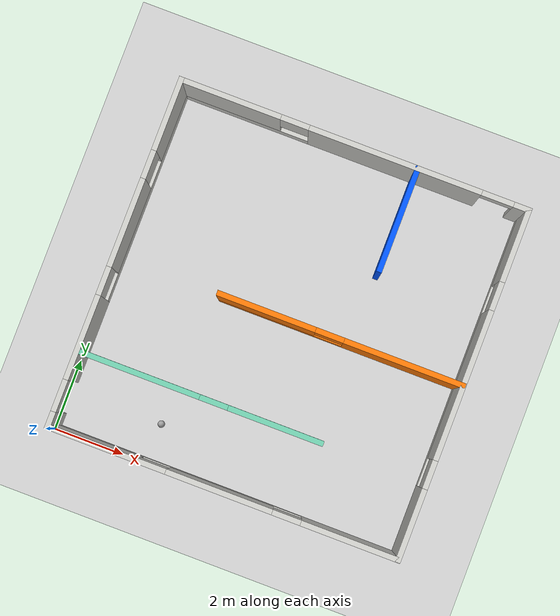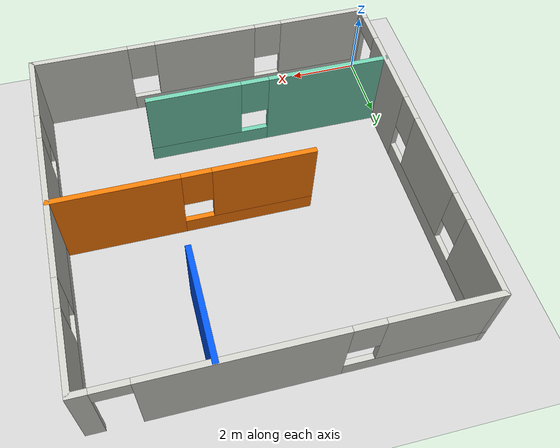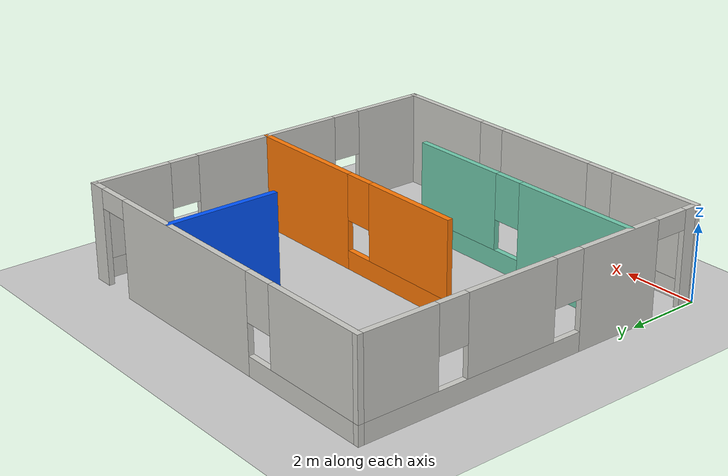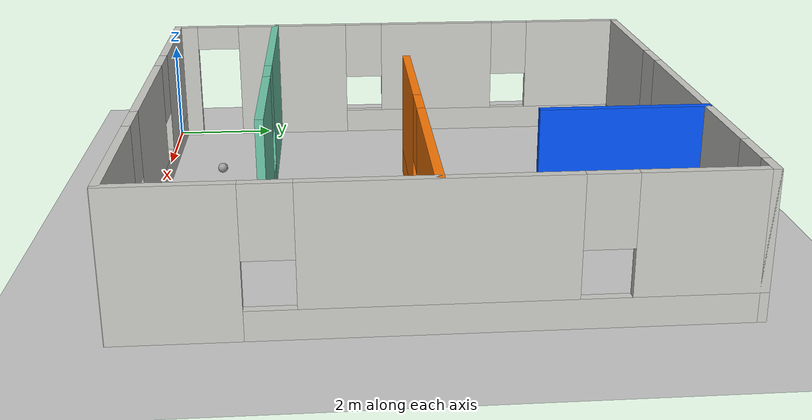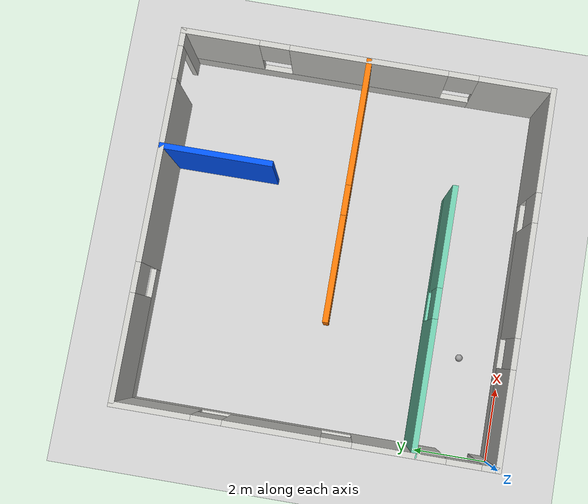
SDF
<sdf version="1.6">
 <world name="default">
  <light name="sun" type="directional">
   <pose>0 0 10 0 -0 0</pose>
   <diffuse>0.8 0.8 0.8 1</diffuse>
   <specular>0.2 0.2 0.2 1</specular>
   <attenuation>
    <range>1000</range>
    <constant>0.9</constant>
    <linear>0.01</linear>
    <quadratic>0.001</quadratic>
   </attenuation>
   <direction>-0.5 0.1 -0.9</direction>
  </light>
  <model name="ground_plane">
   <static>1</static>
   <link name="link">
    <collision name="collision">
     <geometry><plane><normal>0 0 1</normal><size>100 100</size></plane></geometry>
     <surface>
      <contact><collide_bitmask>65535</collide_bitmask></contact>
      <friction><ode><mu>100</mu><mu2>50</mu2></ode></friction>
     </surface>
    </collision>
    <visual name="visual">
     <cast_shadows>0</cast_shadows>
     <geometry><plane><normal>0 0 1</normal><size>100 100</size></plane></geometry>
     <material>
      <script><uri>file://media/materials/scripts/gazebo.material</uri><name>Gazebo/Grey</name></script>
     </material>
    </visual>
   </link>
  </model>
  <gravity>0 0 -9.8</gravity>
  <magnetic_field>6e-06 2.3e-05 -4.2e-05</magnetic_field>
  <atmosphere type="adiabatic"/>
  <physics name="default_physics" default="0" type="ode">
   <max_step_size>0.001</max_step_size>
   <real_time_factor>1</real_time_factor>
   <real_time_update_rate>1000</real_time_update_rate>
  </physics>
  <scene><ambient>0.4 0.4 0.4 1</ambient><background>0.7 0.7 0.7 1</background><shadows>1</shadows></scene>
  <audio><device>default</device></audio>
  <spherical_coordinates>
   <surface_model>EARTH_WGS84</surface_model>
   <latitude_deg>0</latitude_deg>
   <longitude_deg>0</longitude_deg>
   <elevation>0</elevation>
   <heading_deg>0</heading_deg>
  </spherical_coordinates>
  <model name="empty_world">
   <pose>5 5.00002 0 0 -0 1.56978</pose>
   <link name="Wall_18">
    <pose>0.005 -4.925 0 0 -0 0</pose>
    <visual name="Wall_18_Visual_0">
     <pose>-3.96773 0 1.25 0 -0 0</pose>
     <geometry><box><size>2.04455 0.15 2.5</size></box></geometry>
     <material>
      <script><uri>file://media/materials/scripts/gazebo.material</uri><name>Gazebo/CeilingTiled</name></script>
      <ambient>0.760784 0.662745 0.627451 1</ambient>
     </material>
    </visual>
    <collision name="Wall_18_Collision_0">
     <geometry><box><size>2.04455 0.15 2.5</size></box></geometry>
     <pose>-3.96773 0 1.25 0 -0 0</pose>
    </collision>
    <visual name="Wall_18_Visual_1">
     <pose>1.02228 0 0.25 0 -0 0</pose>
     <geometry><box><size>7.93545 0.15 0.5</size></box></geometry>
     <material>
      <script><uri>file://media/materials/scripts/gazebo.material</uri><name>Gazebo/CeilingTiled</name></script>
      <ambient>0.760784 0.662745 0.627451 1</ambient>
     </material>
    </visual>
    <collision name="Wall_18_Collision_1">
     <geometry><box><size>7.93545 0.15 0.5</size></box></geometry>
     <pose>1.02228 0 0.25 0 -0 0</pose>
    </collision>
    <visual name="Wall_18_Visual_2">
     <pose>-0.032699 0 1.5 0 -0 0</pose>
     <geometry><box><size>4.2255 0.15 2</size></box></geometry>
     <material>
      <script><uri>file://media/materials/scripts/gazebo.material</uri><name>Gazebo/CeilingTiled</name></script>
      <ambient>0.760784 0.662745 0.627451 1</ambient>
     </material>
    </visual>
    <collision name="Wall_18_Collision_2">
     <geometry><box><size>4.2255 0.15 2</size></box></geometry>
     <pose>-0.032699 0 1.5 0 -0 0</pose>
    </collision>
    <visual name="Wall_18_Visual_3">
     <pose>3.93502 0 1.5 0 -0 0</pose>
     <geometry><box><size>2.10995 0.15 2</size></box></geometry>
     <material>
      <script><uri>file://media/materials/scripts/gazebo.material</uri><name>Gazebo/CeilingTiled</name></script>
      <ambient>0.760784 0.662745 0.627451 1</ambient>
     </material>
    </visual>
    <collision name="Wall_18_Collision_3">
     <geometry><box><size>2.10995 0.15 2</size></box></geometry>
     <pose>3.93502 0 1.5 0 -0 0</pose>
    </collision>
    <visual name="Wall_18_Visual_4">
     <pose>-2.54545 0 1.9 0 -0 0</pose>
     <geometry><box><size>0.8 0.15 1.2</size></box></geometry>
     <material>
      <script><uri>file://media/materials/scripts/gazebo.material</uri><name>Gazebo/CeilingTiled</name></script>
      <ambient>0.760784 0.662745 0.627451 1</ambient>
     </material>
    </visual>
    <collision name="Wall_18_Collision_4">
     <geometry><box><size>0.8 0.15 1.2</size></box></geometry>
     <pose>-2.54545 0 1.9 0 -0 0</pose>
    </collision>
    <visual name="Wall_18_Visual_5">
     <pose>2.48005 0 1.9 0 -0 0</pose>
     <geometry><box><size>0.8 0.15 1.2</size></box></geometry>
     <material>
      <script><uri>file://media/materials/scripts/gazebo.material</uri><name>Gazebo/CeilingTiled</name></script>
      <ambient>0.760784 0.662745 0.627451 1</ambient>
     </material>
    </visual>
    <collision name="Wall_18_Collision_5">
     <geometry><box><size>0.8 0.15 1.2</size></box></geometry>
     <pose>2.48005 0 1.9 0 -0 0</pose>
    </collision>
   </link>
   <link name="Wall_19">
    <pose>4.92 0 0 0 -0 1.5708</pose>
    <visual name="Wall_19_Visual_0">
     <pose>-4.75044 0 1.25 0 -0 0</pose>
     <geometry><box><size>0.499118 0.15 2.5</size></box></geometry>
     <material>
      <script><uri>file://media/materials/scripts/gazebo.material</uri><name>Gazebo/CeilingTiled</name></script>
      <ambient>0.760784 0.662745 0.627451 1</ambient>
     </material>
    </visual>
    <collision name="Wall_19_Collision_0">
     <geometry><box><size>0.499118 0.15 2.5</size></box></geometry>
     <pose>-4.75044 0 1.25 0 -0 0</pose>
    </collision>
    <visual name="Wall_19_Visual_1">
     <pose>-1.15762 0 1.25 0 -0 0</pose>
     <geometry><box><size>4.88653 0.15 2.5</size></box></geometry>
     <material>
      <script><uri>file://media/materials/scripts/gazebo.material</uri><name>Gazebo/CeilingTiled</name></script>
      <ambient>0.760784 0.662745 0.627451 1</ambient>
     </material>
    </visual>
    <collision name="Wall_19_Collision_1">
     <geometry><box><size>4.88653 0.15 2.5</size></box></geometry>
     <pose>-1.15762 0 1.25 0 -0 0</pose>
    </collision>
    <visual name="Wall_19_Visual_2">
     <pose>3.14283 0 0.25 0 -0 0</pose>
     <geometry><box><size>3.71435 0.15 0.5</size></box></geometry>
     <material>
      <script><uri>file://media/materials/scripts/gazebo.material</uri><name>Gazebo/CeilingTiled</name></script>
      <ambient>0.760784 0.662745 0.627451 1</ambient>
     </material>
    </visual>
    <collision name="Wall_19_Collision_2">
     <geometry><box><size>3.71435 0.15 0.5</size></box></geometry>
     <pose>3.14283 0 0.25 0 -0 0</pose>
    </collision>
    <visual name="Wall_19_Visual_3">
     <pose>3.54283 0 1.5 0 -0 0</pose>
     <geometry><box><size>2.91435 0.15 2</size></box></geometry>
     <material>
      <script><uri>file://media/materials/scripts/gazebo.material</uri><name>Gazebo/CeilingTiled</name></script>
      <ambient>0.760784 0.662745 0.627451 1</ambient>
     </material>
    </visual>
    <collision name="Wall_19_Collision_3">
     <geometry><box><size>2.91435 0.15 2</size></box></geometry>
     <pose>3.54283 0 1.5 0 -0 0</pose>
    </collision>
    <visual name="Wall_19_Visual_4">
     <pose>1.68565 0 1.9 0 -0 0</pose>
     <geometry><box><size>0.8 0.15 1.2</size></box></geometry>
     <material>
      <script><uri>file://media/materials/scripts/gazebo.material</uri><name>Gazebo/CeilingTiled</name></script>
      <ambient>0.760784 0.662745 0.627451 1</ambient>
     </material>
    </visual>
    <collision name="Wall_19_Collision_4">
     <geometry><box><size>0.8 0.15 1.2</size></box></geometry>
     <pose>1.68565 0 1.9 0 -0 0</pose>
    </collision>
    <visual name="Wall_19_Visual_5">
     <pose>-4.05088 0 2.25 0 -0 0</pose>
     <geometry><box><size>0.9 0.15 0.5</size></box></geometry>
     <material>
      <script><uri>file://media/materials/scripts/gazebo.material</uri><name>Gazebo/CeilingTiled</name></script>
      <ambient>0.760784 0.662745 0.627451 1</ambient>
     </material>
    </visual>
    <collision name="Wall_19_Collision_5">
     <geometry><box><size>0.9 0.15 0.5</size></box></geometry>
     <pose>-4.05088 0 2.25 0 -0 0</pose>
    </collision>
   </link>
   <link name="Wall_21">
    <pose>-4.92 0 0 0 -0 1.5708</pose>
    <visual name="Wall_21_Visual_0">
     <pose>-3.59626 0 1.25 0 -0 0</pose>
     <geometry><box><size>2.80747 0.15 2.5</size></box></geometry>
     <material>
      <script><uri>file://media/materials/scripts/gazebo.material</uri><name>Gazebo/CeilingTiled</name></script>
      <ambient>0.760784 0.662745 0.627451 1</ambient>
     </material>
    </visual>
    <collision name="Wall_21_Collision_0">
     <geometry><box><size>2.80747 0.15 2.5</size></box></geometry>
     <pose>-3.59626 0 1.25 0 -0 0</pose>
    </collision>
    <visual name="Wall_21_Visual_1">
     <pose>1.40374 0 0.25 0 -0 0</pose>
     <geometry><box><size>7.19253 0.15 0.5</size></box></geometry>
     <material>
      <script><uri>file://media/materials/scripts/gazebo.material</uri><name>Gazebo/CeilingTiled</name></script>
      <ambient>0.760784 0.662745 0.627451 1</ambient>
     </material>
    </visual>
    <collision name="Wall_21_Collision_1">
     <geometry><box><size>7.19253 0.15 0.5</size></box></geometry>
     <pose>1.40374 0 0.25 0 -0 0</pose>
    </collision>
    <visual name="Wall_21_Visual_2">
     <pose>0.105262 0 1.5 0 -0 0</pose>
     <geometry><box><size>2.99558 0.15 2</size></box></geometry>
     <material>
      <script><uri>file://media/materials/scripts/gazebo.material</uri><name>Gazebo/CeilingTiled</name></script>
      <ambient>0.760784 0.662745 0.627451 1</ambient>
     </material>
    </visual>
    <collision name="Wall_21_Collision_2">
     <geometry><box><size>2.99558 0.15 2</size></box></geometry>
     <pose>0.105262 0 1.5 0 -0 0</pose>
    </collision>
    <visual name="Wall_21_Visual_3">
     <pose>3.70153 0 1.5 0 -0 0</pose>
     <geometry><box><size>2.59695 0.15 2</size></box></geometry>
     <material>
      <script><uri>file://media/materials/scripts/gazebo.material</uri><name>Gazebo/CeilingTiled</name></script>
      <ambient>0.760784 0.662745 0.627451 1</ambient>
     </material>
    </visual>
    <collision name="Wall_21_Collision_3">
     <geometry><box><size>2.59695 0.15 2</size></box></geometry>
     <pose>3.70153 0 1.5 0 -0 0</pose>
    </collision>
    <visual name="Wall_21_Visual_4">
     <pose>-1.79253 0 1.9 0 -0 0</pose>
     <geometry><box><size>0.8 0.15 1.2</size></box></geometry>
     <material>
      <script><uri>file://media/materials/scripts/gazebo.material</uri><name>Gazebo/CeilingTiled</name></script>
      <ambient>0.760784 0.662745 0.627451 1</ambient>
     </material>
    </visual>
    <collision name="Wall_21_Collision_4">
     <geometry><box><size>0.8 0.15 1.2</size></box></geometry>
     <pose>-1.79253 0 1.9 0 -0 0</pose>
    </collision>
    <visual name="Wall_21_Visual_5">
     <pose>2.00305 0 1.9 0 -0 0</pose>
     <geometry><box><size>0.8 0.15 1.2</size></box></geometry>
     <material>
      <script><uri>file://media/materials/scripts/gazebo.material</uri><name>Gazebo/CeilingTiled</name></script>
      <ambient>0.760784 0.662745 0.627451 1</ambient>
     </material>
    </visual>
    <collision name="Wall_21_Collision_5">
     <geometry><box><size>0.8 0.15 1.2</size></box></geometry>
     <pose>2.00305 0 1.9 0 -0 0</pose>
    </collision>
   </link>
   <link name="Wall_23">
    <pose>0 4.925 0 0 -0 0</pose>
    <visual name="Wall_23_Visual_0">
     <pose>-4.74562 0 1.25 0 -0 0</pose>
     <geometry><box><size>0.498755 0.15 2.5</size></box></geometry>
     <material>
      <script><uri>file://media/materials/scripts/gazebo.material</uri><name>Gazebo/CeilingTiled</name></script>
      <ambient>0.760784 0.662745 0.627451 1</ambient>
     </material>
    </visual>
    <collision name="Wall_23_Collision_0">
     <geometry><box><size>0.498755 0.15 2.5</size></box></geometry>
     <pose>-4.74562 0 1.25 0 -0 0</pose>
    </collision>
    <visual name="Wall_23_Visual_1">
     <pose>-2.40211 0 1.25 0 -0 0</pose>
     <geometry><box><size>2.38827 0.15 2.5</size></box></geometry>
     <material>
      <script><uri>file://media/materials/scripts/gazebo.material</uri><name>Gazebo/CeilingTiled</name></script>
      <ambient>0.760784 0.662745 0.627451 1</ambient>
     </material>
    </visual>
    <collision name="Wall_23_Collision_1">
     <geometry><box><size>2.38827 0.15 2.5</size></box></geometry>
     <pose>-2.40211 0 1.25 0 -0 0</pose>
    </collision>
    <visual name="Wall_23_Visual_2">
     <pose>1.89351 0 0.25 0 -0 0</pose>
     <geometry><box><size>6.20297 0.15 0.5</size></box></geometry>
     <material>
      <script><uri>file://media/materials/scripts/gazebo.material</uri><name>Gazebo/CeilingTiled</name></script>
      <ambient>0.760784 0.662745 0.627451 1</ambient>
     </material>
    </visual>
    <collision name="Wall_23_Collision_2">
     <geometry><box><size>6.20297 0.15 0.5</size></box></geometry>
     <pose>1.89351 0 0.25 0 -0 0</pose>
    </collision>
    <visual name="Wall_23_Visual_3">
     <pose>0.845151 0 1.5 0 -0 0</pose>
     <geometry><box><size>2.50625 0.15 2</size></box></geometry>
     <material>
      <script><uri>file://media/materials/scripts/gazebo.material</uri><name>Gazebo/CeilingTiled</name></script>
      <ambient>0.760784 0.662745 0.627451 1</ambient>
     </material>
    </visual>
    <collision name="Wall_23_Collision_3">
     <geometry><box><size>2.50625 0.15 2</size></box></geometry>
     <pose>0.845151 0 1.5 0 -0 0</pose>
    </collision>
    <visual name="Wall_23_Visual_4">
     <pose>3.94664 0 1.5 0 -0 0</pose>
     <geometry><box><size>2.09672 0.15 2</size></box></geometry>
     <material>
      <script><uri>file://media/materials/scripts/gazebo.material</uri><name>Gazebo/CeilingTiled</name></script>
      <ambient>0.760784 0.662745 0.627451 1</ambient>
     </material>
    </visual>
    <collision name="Wall_23_Collision_4">
     <geometry><box><size>2.09672 0.15 2</size></box></geometry>
     <pose>3.94664 0 1.5 0 -0 0</pose>
    </collision>
    <visual name="Wall_23_Visual_5">
     <pose>-0.807974 0 1.9 0 -0 0</pose>
     <geometry><box><size>0.8 0.15 1.2</size></box></geometry>
     <material>
      <script><uri>file://media/materials/scripts/gazebo.material</uri><name>Gazebo/CeilingTiled</name></script>
      <ambient>0.760784 0.662745 0.627451 1</ambient>
     </material>
    </visual>
    <collision name="Wall_23_Collision_5">
     <geometry><box><size>0.8 0.15 1.2</size></box></geometry>
     <pose>-0.807974 0 1.9 0 -0 0</pose>
    </collision>
    <visual name="Wall_23_Visual_6">
     <pose>2.49828 0 1.9 0 -0 0</pose>
     <geometry><box><size>0.8 0.15 1.2</size></box></geometry>
     <material>
      <script><uri>file://media/materials/scripts/gazebo.material</uri><name>Gazebo/CeilingTiled</name></script>
      <ambient>0.760784 0.662745 0.627451 1</ambient>
     </material>
    </visual>
    <collision name="Wall_23_Collision_6">
     <geometry><box><size>0.8 0.15 1.2</size></box></geometry>
     <pose>2.49828 0 1.9 0 -0 0</pose>
    </collision>
    <visual name="Wall_23_Visual_7">
     <pose>-4.04624 0 2.25 0 -0 0</pose>
     <geometry><box><size>0.9 0.15 0.5</size></box></geometry>
     <material>
      <script><uri>file://media/materials/scripts/gazebo.material</uri><name>Gazebo/CeilingTiled</name></script>
      <ambient>0.760784 0.662745 0.627451 1</ambient>
     </material>
    </visual>
    <collision name="Wall_23_Collision_7">
     <geometry><box><size>0.9 0.15 0.5</size></box></geometry>
     <pose>-4.04624 0 2.25 0 -0 0</pose>
    </collision>
   </link>
   <link name="Wall_26">
    <pose>-2.77703 1.4768 0 0 0 -1.5708</pose>
    <visual name="Wall_26_Visual_0">
     <pose>-1.74364 0 1.25 0 -0 0</pose>
     <geometry><box><size>3.51272 0.15 2.5</size></box></geometry>
     <material>
      <script><uri>file://media/materials/scripts/gazebo.material</uri><name>Gazebo/Grey</name></script>
      <ambient>0.435294 0.796078 0.67451 1</ambient>
     </material>
    </visual>
    <collision name="Wall_26_Collision_0">
     <geometry><box><size>3.51272 0.15 2.5</size></box></geometry>
     <pose>-1.74364 0 1.25 0 -0 0</pose>
    </collision>
    <visual name="Wall_26_Visual_1">
     <pose>1.75636 0 0.25 0 -0 0</pose>
     <geometry><box><size>3.48728 0.15 0.5</size></box></geometry>
     <material>
      <script><uri>file://media/materials/scripts/gazebo.material</uri><name>Gazebo/Grey</name></script>
      <ambient>0.435294 0.796078 0.67451 1</ambient>
     </material>
    </visual>
    <collision name="Wall_26_Collision_1">
     <geometry><box><size>3.48728 0.15 0.5</size></box></geometry>
     <pose>1.75636 0 0.25 0 -0 0</pose>
    </collision>
    <visual name="Wall_26_Visual_2">
     <pose>2.15636 0 1.5 0 -0 0</pose>
     <geometry><box><size>2.68728 0.15 2</size></box></geometry>
     <material>
      <script><uri>file://media/materials/scripts/gazebo.material</uri><name>Gazebo/Grey</name></script>
      <ambient>0.435294 0.796078 0.67451 1</ambient>
     </material>
    </visual>
    <collision name="Wall_26_Collision_2">
     <geometry><box><size>2.68728 0.15 2</size></box></geometry>
     <pose>2.15636 0 1.5 0 -0 0</pose>
    </collision>
    <visual name="Wall_26_Visual_3">
     <pose>0.412723 0 1.9 0 -0 0</pose>
     <geometry><box><size>0.8 0.15 1.2</size></box></geometry>
     <material>
      <script><uri>file://media/materials/scripts/gazebo.material</uri><name>Gazebo/Grey</name></script>
      <ambient>0.435294 0.796078 0.67451 1</ambient>
     </material>
    </visual>
    <collision name="Wall_26_Collision_3">
     <geometry><box><size>0.8 0.15 1.2</size></box></geometry>
     <pose>0.412723 0 1.9 0 -0 0</pose>
    </collision>
   </link>
   <link name="Wall_28">
    <pose>-0.040028 -1.4827 0 0 -0 1.5708</pose>
    <visual name="Wall_28_Visual_0">
     <pose>-1.79412 0 1.25 0 -0 0</pose>
     <geometry><box><size>3.41175 0.15 2.5</size></box></geometry>
     <material>
      <script><uri>file://media/materials/scripts/gazebo.material</uri><name>Gazebo/Grey</name></script>
      <ambient>0.996078 0.47451 0.0196078 1</ambient>
     </material>
    </visual>
    <collision name="Wall_28_Collision_0">
     <geometry><box><size>3.41175 0.15 2.5</size></box></geometry>
     <pose>-1.79412 0 1.25 0 -0 0</pose>
    </collision>
    <visual name="Wall_28_Visual_1">
     <pose>1.70588 0 0.25 0 -0 0</pose>
     <geometry><box><size>3.58825 0.15 0.5</size></box></geometry>
     <material>
      <script><uri>file://media/materials/scripts/gazebo.material</uri><name>Gazebo/Grey</name></script>
      <ambient>0.996078 0.47451 0.0196078 1</ambient>
     </material>
    </visual>
    <collision name="Wall_28_Collision_1">
     <geometry><box><size>3.58825 0.15 0.5</size></box></geometry>
     <pose>1.70588 0 0.25 0 -0 0</pose>
    </collision>
    <visual name="Wall_28_Visual_2">
     <pose>2.10588 0 1.5 0 -0 0</pose>
     <geometry><box><size>2.78825 0.15 2</size></box></geometry>
     <material>
      <script><uri>file://media/materials/scripts/gazebo.material</uri><name>Gazebo/Grey</name></script>
      <ambient>0.996078 0.47451 0.0196078 1</ambient>
     </material>
    </visual>
    <collision name="Wall_28_Collision_2">
     <geometry><box><size>2.78825 0.15 2</size></box></geometry>
     <pose>2.10588 0 1.5 0 -0 0</pose>
    </collision>
    <visual name="Wall_28_Visual_3">
     <pose>0.311753 0 1.9 0 -0 0</pose>
     <geometry><box><size>0.8 0.15 1.2</size></box></geometry>
     <material>
      <script><uri>file://media/materials/scripts/gazebo.material</uri><name>Gazebo/Grey</name></script>
      <ambient>0.996078 0.47451 0.0196078 1</ambient>
     </material>
    </visual>
    <collision name="Wall_28_Collision_3">
     <geometry><box><size>0.8 0.15 1.2</size></box></geometry>
     <pose>0.311753 0 1.9 0 -0 0</pose>
    </collision>
   </link>
   <link name="Wall_30">
    <collision name="Wall_30_Collision">
     <geometry><box><size>3 0.15 2.5</size></box></geometry>
     <pose>0 0 1.25 0 -0 0</pose>
    </collision>
    <visual name="Wall_30_Visual">
     <pose>0 0 1.25 0 -0 0</pose>
     <geometry><box><size>3 0.15 2.5</size></box></geometry>
     <material>
      <script><uri>file://media/materials/scripts/gazebo.material</uri><name>Gazebo/Grey</name></script>
      <ambient>0 0.333333 1 1</ambient>
     </material>
    </visual>
    <pose>3.47997 -1.7912 0 0 -0 3.14159</pose>
   </link>
   <static>1</static>
  </model>
  <model name="model_white_ball">
   <link name="link_0">
    <inertial>
     <mass>1</mass>
     <inertia><ixx>0.1</ixx><ixy>0</ixy><ixz>0</ixz><iyy>0.1</iyy><iyz>0</iyz><izz>0.1</izz></inertia>
    </inertial>
    <visual name="visual">
     <geometry><sphere><radius>0.1</radius></sphere></geometry>
     <material>
      <lighting>1</lighting>
      <script><uri>file://media/materials/scripts/gazebo.material</uri><name>Gazebo/Grey</name></script>
      <ambient>1 1 1 1</ambient>
      <shader type="vertex"><normal_map>__default__</normal_map></shader>
      <diffuse>1 1 1 1</diffuse>
      <specular>1 1 1 1</specular>
      <emissive>1 1 1 1</emissive>
     </material>
    </visual>
    <collision name="collision">
     <geometry><sphere><radius>0.1</radius></sphere></geometry>
     <surface>
      <friction>
       <ode><mu>1</mu><mu2>1</mu2><fdir1>0 0 0</fdir1><slip1>0</slip1><slip2>0</slip2></ode>
       <torsional>
        <coefficient>1</coefficient>
        <patch_radius>0</patch_radius>
        <surface_radius>0</surface_radius>
        <use_patch_radius>1</use_patch_radius>
        <ode><slip>0</slip></ode>
       </torsional>
      </friction>
      <bounce><restitution_coefficient>0</restitution_coefficient><threshold>1e+06</threshold></bounce>
      <contact>
       <collide_without_contact>0</collide_without_contact>
       <collide_without_contact_bitmask>1</collide_without_contact_bitmask>
       <collide_bitmask>1</collide_bitmask>
       <ode>
        <soft_cfm>0</soft_cfm>
        <soft_erp>0.2</soft_erp>
        <kp>1e+13</kp>
        <kd>1</kd>
        <max_vel>0.01</max_vel>
        <min_depth>0</min_depth>
       </ode>
       <bullet>
        <split_impulse>1</split_impulse>
        <split_impulse_penetration_threshold>-0.01</split_impulse_penetration_threshold>
        <soft_cfm>0</soft_cfm>
        <soft_erp>0.2</soft_erp>
        <kp>1e+13</kp>
        <kd>1</kd>
       </bullet>
      </contact>
     </surface>
    </collision>
   </link>
   <static>0</static>
   <pose>2.69845 1.15417 0.1 0 -0 0</pose>
  </model>
 </world>
</sdf>
